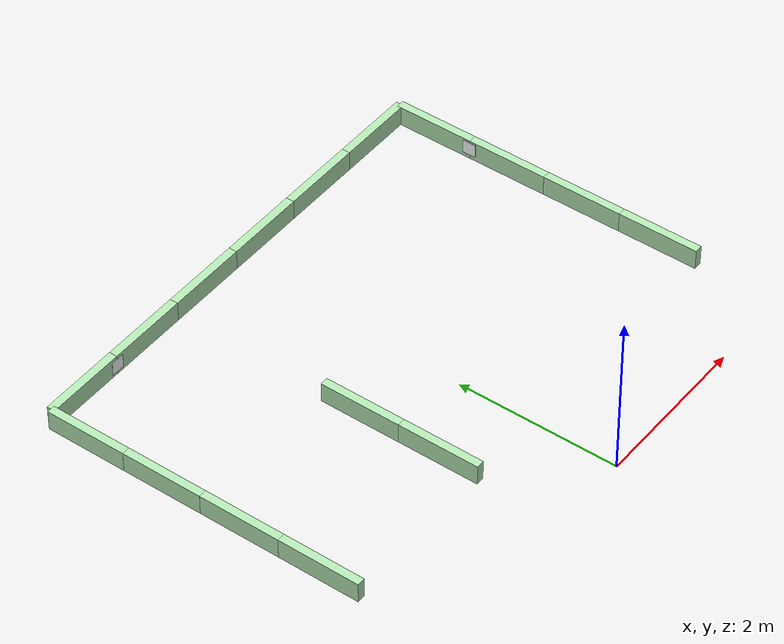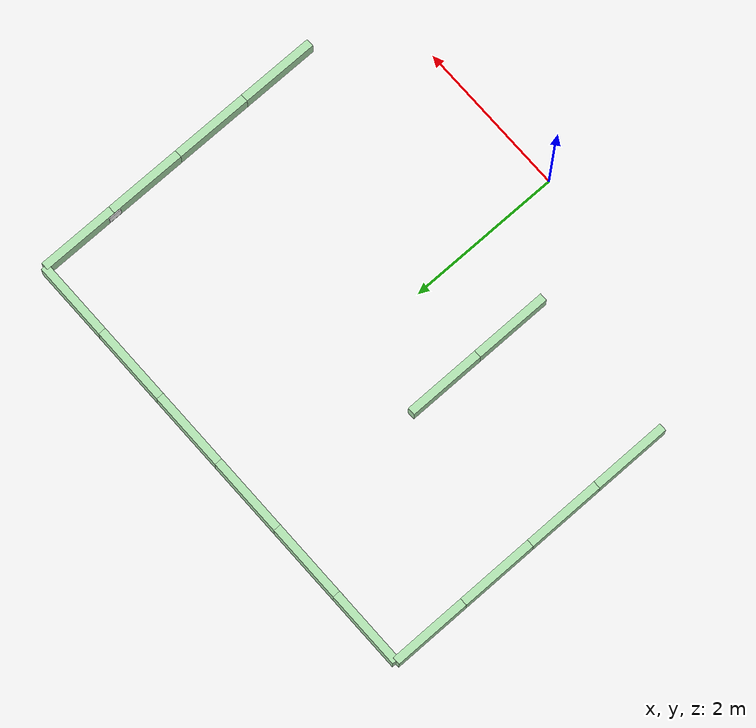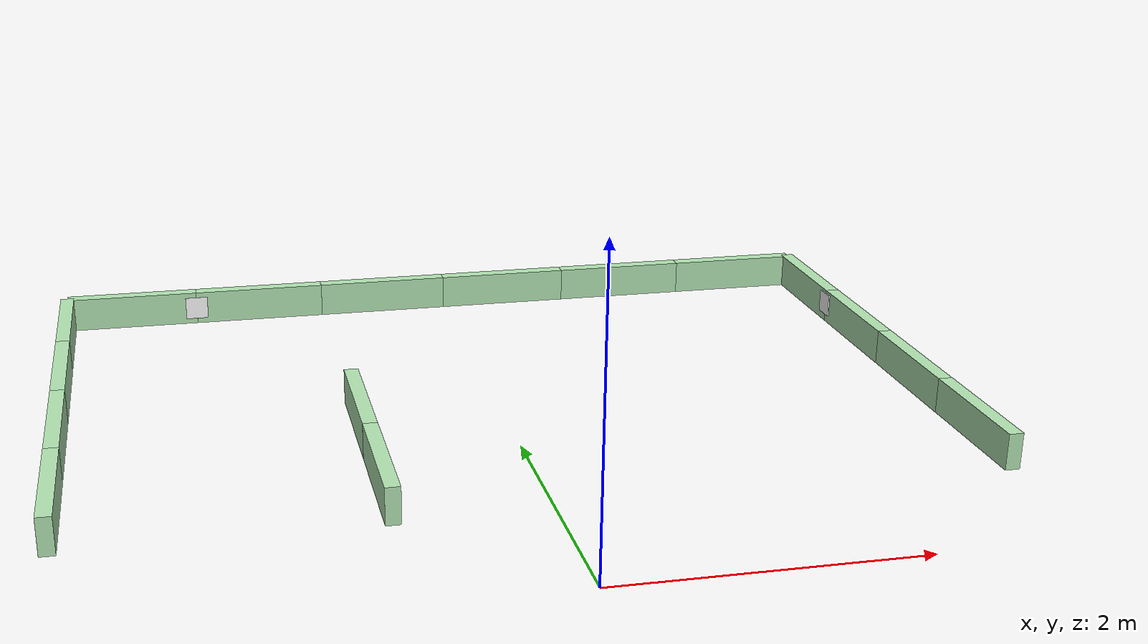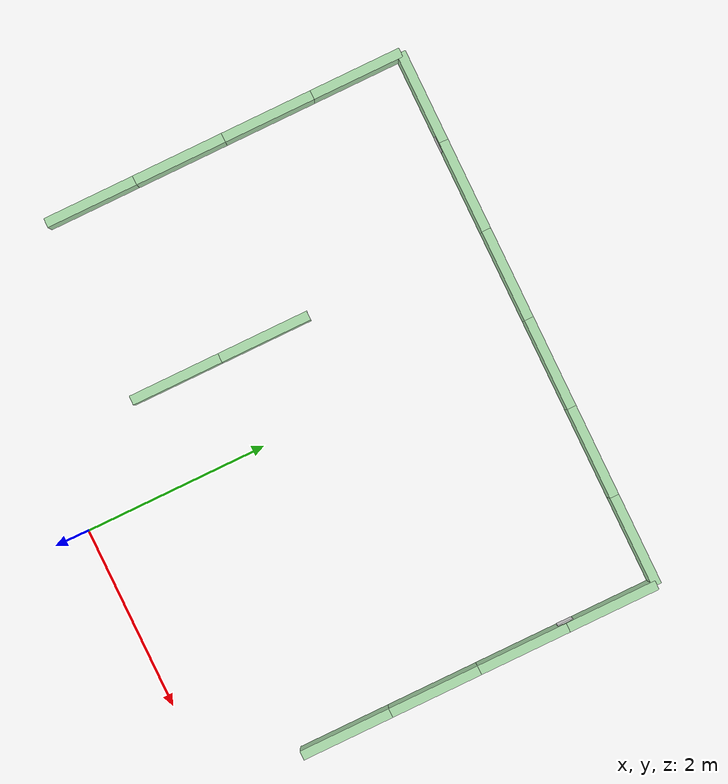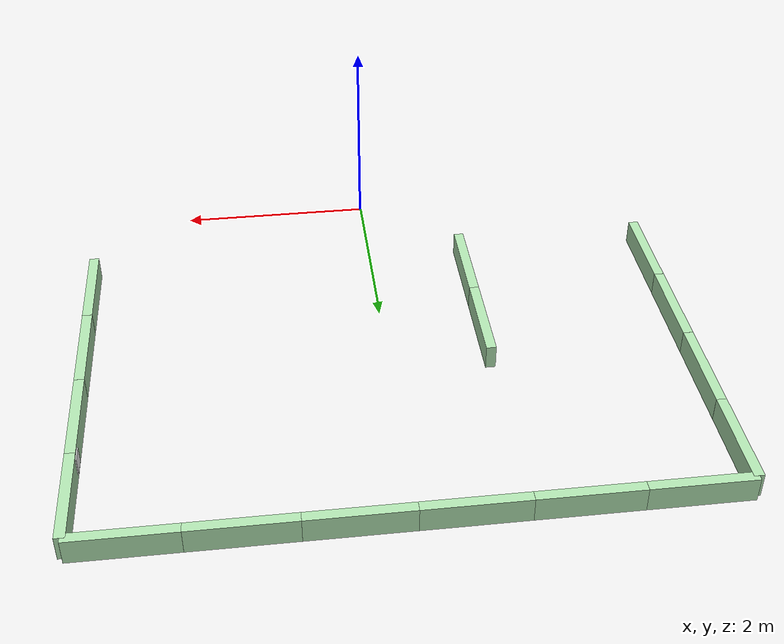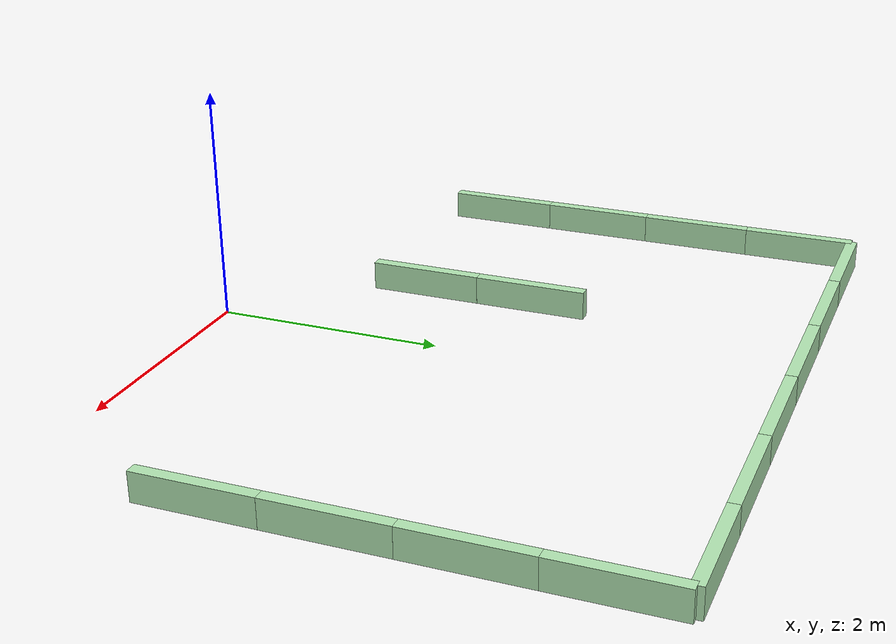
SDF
<sdf version="1.6">
 <world name="default">
  <model name="wall_100_25h_1_clone_9_clone_clone_8">
   <link name="link">
    <inertial>
     <mass>1</mass>
     <inertia>
      <ixx>0.166667</ixx>
      <ixy>0</ixy>
      <ixz>0</ixz>
      <iyy>0.166667</iyy>
      <iyz>0</iyz>
      <izz>0.166667</izz>
     </inertia>
    </inertial>
    <visual name="visual">
     <geometry><box><size>1 0.1 0.25</size></box></geometry>
     <material>
      <script><name>Gazebo/Grey</name><uri>file://media/materials/scripts/gazebo.material</uri></script>
      <ambient>0.3 0.5 0.3 1</ambient>
      <diffuse>0.7 0.9 0.7 1</diffuse>
      <specular>0.01 0.02 0.01 1</specular>
      <emissive>0 0 0 1</emissive>
      <lighting>1</lighting>
      <shader type="vertex"><normal_map>__default__</normal_map></shader>
     </material>
    </visual>
    <collision name="collision">
     <geometry><box><size>1 0.1 0.25</size></box></geometry>
     <surface>
      <friction>
       <ode><mu>1</mu><mu2>1</mu2><fdir1>0 0 0</fdir1><slip1>0</slip1><slip2>0</slip2></ode>
       <torsional>
        <coefficient>1</coefficient>
        <patch_radius>0</patch_radius>
        <surface_radius>0</surface_radius>
        <use_patch_radius>1</use_patch_radius>
        <ode><slip>0</slip></ode>
       </torsional>
      </friction>
      <bounce><restitution_coefficient>0</restitution_coefficient><threshold>1e+06</threshold></bounce>
      <contact>
       <collide_without_contact>0</collide_without_contact>
       <collide_without_contact_bitmask>1</collide_without_contact_bitmask>
       <collide_bitmask>1</collide_bitmask>
       <ode>
        <soft_cfm>0</soft_cfm>
        <soft_erp>0.2</soft_erp>
        <kp>1e+13</kp>
        <kd>1</kd>
        <max_vel>0.01</max_vel>
        <min_depth>0</min_depth>
       </ode>
       <bullet>
        <split_impulse>1</split_impulse>
        <split_impulse_penetration_threshold>-0.01</split_impulse_penetration_threshold>
        <soft_cfm>0</soft_cfm>
        <soft_erp>0.2</soft_erp>
        <kp>1e+13</kp>
        <kd>1</kd>
       </bullet>
      </contact>
     </surface>
    </collision>
   </link>
   <static>1</static>
   <pose>-1 1.5 0.125 0 0.000404 -1.57111</pose>
  </model>
  <model name="wall_100_25h_1_clone_9_clone_clone_9">
   <link name="link">
    <inertial>
     <mass>1</mass>
     <inertia>
      <ixx>0.166667</ixx>
      <ixy>0</ixy>
      <ixz>0</ixz>
      <iyy>0.166667</iyy>
      <iyz>0</iyz>
      <izz>0.166667</izz>
     </inertia>
    </inertial>
    <visual name="visual">
     <geometry><box><size>1 0.1 0.25</size></box></geometry>
     <material>
      <script><name>Gazebo/Grey</name><uri>file://media/materials/scripts/gazebo.material</uri></script>
      <ambient>0.3 0.5 0.3 1</ambient>
      <diffuse>0.7 0.9 0.7 1</diffuse>
      <specular>0.01 0.02 0.01 1</specular>
      <emissive>0 0 0 1</emissive>
      <lighting>1</lighting>
      <shader type="vertex"><normal_map>__default__</normal_map></shader>
     </material>
    </visual>
    <collision name="collision">
     <geometry><box><size>1 0.1 0.25</size></box></geometry>
     <surface>
      <friction>
       <ode><mu>1</mu><mu2>1</mu2><fdir1>0 0 0</fdir1><slip1>0</slip1><slip2>0</slip2></ode>
       <torsional>
        <coefficient>1</coefficient>
        <patch_radius>0</patch_radius>
        <surface_radius>0</surface_radius>
        <use_patch_radius>1</use_patch_radius>
        <ode><slip>0</slip></ode>
       </torsional>
      </friction>
      <bounce><restitution_coefficient>0</restitution_coefficient><threshold>1e+06</threshold></bounce>
      <contact>
       <collide_without_contact>0</collide_without_contact>
       <collide_without_contact_bitmask>1</collide_without_contact_bitmask>
       <collide_bitmask>1</collide_bitmask>
       <ode>
        <soft_cfm>0</soft_cfm>
        <soft_erp>0.2</soft_erp>
        <kp>1e+13</kp>
        <kd>1</kd>
        <max_vel>0.01</max_vel>
        <min_depth>0</min_depth>
       </ode>
       <bullet>
        <split_impulse>1</split_impulse>
        <split_impulse_penetration_threshold>-0.01</split_impulse_penetration_threshold>
        <soft_cfm>0</soft_cfm>
        <soft_erp>0.2</soft_erp>
        <kp>1e+13</kp>
        <kd>1</kd>
       </bullet>
      </contact>
     </surface>
    </collision>
   </link>
   <static>1</static>
   <pose>-1 2.5 0.125 0 0.000404 -1.57111</pose>
  </model>
  <model name="wall_100_25h_1_clone_9_clone_clone_12">
   <link name="link">
    <inertial>
     <mass>1</mass>
     <inertia>
      <ixx>0.166667</ixx>
      <ixy>0</ixy>
      <ixz>0</ixz>
      <iyy>0.166667</iyy>
      <iyz>0</iyz>
      <izz>0.166667</izz>
     </inertia>
    </inertial>
    <visual name="visual">
     <geometry><box><size>1 0.1 0.25</size></box></geometry>
     <material>
      <script><name>Gazebo/Grey</name><uri>file://media/materials/scripts/gazebo.material</uri></script>
      <ambient>0.3 0.5 0.3 1</ambient>
      <diffuse>0.7 0.9 0.7 1</diffuse>
      <specular>0.01 0.02 0.01 1</specular>
      <emissive>0 0 0 1</emissive>
      <lighting>1</lighting>
      <shader type="vertex"><normal_map>__default__</normal_map></shader>
     </material>
    </visual>
    <collision name="collision">
     <geometry><box><size>1 0.1 0.25</size></box></geometry>
     <surface>
      <friction>
       <ode><mu>1</mu><mu2>1</mu2><fdir1>0 0 0</fdir1><slip1>0</slip1><slip2>0</slip2></ode>
       <torsional>
        <coefficient>1</coefficient>
        <patch_radius>0</patch_radius>
        <surface_radius>0</surface_radius>
        <use_patch_radius>1</use_patch_radius>
        <ode><slip>0</slip></ode>
       </torsional>
      </friction>
      <bounce><restitution_coefficient>0</restitution_coefficient><threshold>1e+06</threshold></bounce>
      <contact>
       <collide_without_contact>0</collide_without_contact>
       <collide_without_contact_bitmask>1</collide_without_contact_bitmask>
       <collide_bitmask>1</collide_bitmask>
       <ode>
        <soft_cfm>0</soft_cfm>
        <soft_erp>0.2</soft_erp>
        <kp>1e+13</kp>
        <kd>1</kd>
        <max_vel>0.01</max_vel>
        <min_depth>0</min_depth>
       </ode>
       <bullet>
        <split_impulse>1</split_impulse>
        <split_impulse_penetration_threshold>-0.01</split_impulse_penetration_threshold>
        <soft_cfm>0</soft_cfm>
        <soft_erp>0.2</soft_erp>
        <kp>1e+13</kp>
        <kd>1</kd>
       </bullet>
      </contact>
     </surface>
    </collision>
   </link>
   <static>1</static>
   <pose>-3 1.5 0.125 0 0.000404 -1.57111</pose>
  </model>
  <model name="wall_100_25h_1_clone_9_clone_clone_13">
   <link name="link">
    <inertial>
     <mass>1</mass>
     <inertia>
      <ixx>0.166667</ixx>
      <ixy>0</ixy>
      <ixz>0</ixz>
      <iyy>0.166667</iyy>
      <iyz>0</iyz>
      <izz>0.166667</izz>
     </inertia>
    </inertial>
    <visual name="visual">
     <geometry><box><size>1 0.1 0.25</size></box></geometry>
     <material>
      <script><name>Gazebo/Grey</name><uri>file://media/materials/scripts/gazebo.material</uri></script>
      <ambient>0.3 0.5 0.3 1</ambient>
      <diffuse>0.7 0.9 0.7 1</diffuse>
      <specular>0.01 0.02 0.01 1</specular>
      <emissive>0 0 0 1</emissive>
      <lighting>1</lighting>
      <shader type="vertex"><normal_map>__default__</normal_map></shader>
     </material>
    </visual>
    <collision name="collision">
     <geometry><box><size>1 0.1 0.25</size></box></geometry>
     <surface>
      <friction>
       <ode><mu>1</mu><mu2>1</mu2><fdir1>0 0 0</fdir1><slip1>0</slip1><slip2>0</slip2></ode>
       <torsional>
        <coefficient>1</coefficient>
        <patch_radius>0</patch_radius>
        <surface_radius>0</surface_radius>
        <use_patch_radius>1</use_patch_radius>
        <ode><slip>0</slip></ode>
       </torsional>
      </friction>
      <bounce><restitution_coefficient>0</restitution_coefficient><threshold>1e+06</threshold></bounce>
      <contact>
       <collide_without_contact>0</collide_without_contact>
       <collide_without_contact_bitmask>1</collide_without_contact_bitmask>
       <collide_bitmask>1</collide_bitmask>
       <ode>
        <soft_cfm>0</soft_cfm>
        <soft_erp>0.2</soft_erp>
        <kp>1e+13</kp>
        <kd>1</kd>
        <max_vel>0.01</max_vel>
        <min_depth>0</min_depth>
       </ode>
       <bullet>
        <split_impulse>1</split_impulse>
        <split_impulse_penetration_threshold>-0.01</split_impulse_penetration_threshold>
        <soft_cfm>0</soft_cfm>
        <soft_erp>0.2</soft_erp>
        <kp>1e+13</kp>
        <kd>1</kd>
       </bullet>
      </contact>
     </surface>
    </collision>
   </link>
   <static>1</static>
   <pose>-3 2.5 0.125 0 0.000404 -1.57111</pose>
  </model>
  <model name="wall_100_25h_1_clone_9_clone_clone_14">
   <link name="link">
    <inertial>
     <mass>1</mass>
     <inertia>
      <ixx>0.166667</ixx>
      <ixy>0</ixy>
      <ixz>0</ixz>
      <iyy>0.166667</iyy>
      <iyz>0</iyz>
      <izz>0.166667</izz>
     </inertia>
    </inertial>
    <visual name="visual">
     <geometry><box><size>1 0.1 0.25</size></box></geometry>
     <material>
      <script><name>Gazebo/Grey</name><uri>file://media/materials/scripts/gazebo.material</uri></script>
      <ambient>0.3 0.5 0.3 1</ambient>
      <diffuse>0.7 0.9 0.7 1</diffuse>
      <specular>0.01 0.02 0.01 1</specular>
      <emissive>0 0 0 1</emissive>
      <lighting>1</lighting>
      <shader type="vertex"><normal_map>__default__</normal_map></shader>
     </material>
    </visual>
    <collision name="collision">
     <geometry><box><size>1 0.1 0.25</size></box></geometry>
     <surface>
      <friction>
       <ode><mu>1</mu><mu2>1</mu2><fdir1>0 0 0</fdir1><slip1>0</slip1><slip2>0</slip2></ode>
       <torsional>
        <coefficient>1</coefficient>
        <patch_radius>0</patch_radius>
        <surface_radius>0</surface_radius>
        <use_patch_radius>1</use_patch_radius>
        <ode><slip>0</slip></ode>
       </torsional>
      </friction>
      <bounce><restitution_coefficient>0</restitution_coefficient><threshold>1e+06</threshold></bounce>
      <contact>
       <collide_without_contact>0</collide_without_contact>
       <collide_without_contact_bitmask>1</collide_without_contact_bitmask>
       <collide_bitmask>1</collide_bitmask>
       <ode>
        <soft_cfm>0</soft_cfm>
        <soft_erp>0.2</soft_erp>
        <kp>1e+13</kp>
        <kd>1</kd>
        <max_vel>0.01</max_vel>
        <min_depth>0</min_depth>
       </ode>
       <bullet>
        <split_impulse>1</split_impulse>
        <split_impulse_penetration_threshold>-0.01</split_impulse_penetration_threshold>
        <soft_cfm>0</soft_cfm>
        <soft_erp>0.2</soft_erp>
        <kp>1e+13</kp>
        <kd>1</kd>
       </bullet>
      </contact>
     </surface>
    </collision>
   </link>
   <static>1</static>
   <pose>3 1.5 0.125 0 0.000404 -1.57111</pose>
  </model>
  <model name="wall_100_25h_1_clone_9_clone_clone_15">
   <link name="link">
    <inertial>
     <mass>1</mass>
     <inertia>
      <ixx>0.166667</ixx>
      <ixy>0</ixy>
      <ixz>0</ixz>
      <iyy>0.166667</iyy>
      <iyz>0</iyz>
      <izz>0.166667</izz>
     </inertia>
    </inertial>
    <visual name="visual">
     <geometry><box><size>1 0.1 0.25</size></box></geometry>
     <material>
      <script><name>Gazebo/Grey</name><uri>file://media/materials/scripts/gazebo.material</uri></script>
      <ambient>0.3 0.5 0.3 1</ambient>
      <diffuse>0.7 0.9 0.7 1</diffuse>
      <specular>0.01 0.02 0.01 1</specular>
      <emissive>0 0 0 1</emissive>
      <lighting>1</lighting>
      <shader type="vertex"><normal_map>__default__</normal_map></shader>
     </material>
    </visual>
    <collision name="collision">
     <geometry><box><size>1 0.1 0.25</size></box></geometry>
     <surface>
      <friction>
       <ode><mu>1</mu><mu2>1</mu2><fdir1>0 0 0</fdir1><slip1>0</slip1><slip2>0</slip2></ode>
       <torsional>
        <coefficient>1</coefficient>
        <patch_radius>0</patch_radius>
        <surface_radius>0</surface_radius>
        <use_patch_radius>1</use_patch_radius>
        <ode><slip>0</slip></ode>
       </torsional>
      </friction>
      <bounce><restitution_coefficient>0</restitution_coefficient><threshold>1e+06</threshold></bounce>
      <contact>
       <collide_without_contact>0</collide_without_contact>
       <collide_without_contact_bitmask>1</collide_without_contact_bitmask>
       <collide_bitmask>1</collide_bitmask>
       <ode>
        <soft_cfm>0</soft_cfm>
        <soft_erp>0.2</soft_erp>
        <kp>1e+13</kp>
        <kd>1</kd>
        <max_vel>0.01</max_vel>
        <min_depth>0</min_depth>
       </ode>
       <bullet>
        <split_impulse>1</split_impulse>
        <split_impulse_penetration_threshold>-0.01</split_impulse_penetration_threshold>
        <soft_cfm>0</soft_cfm>
        <soft_erp>0.2</soft_erp>
        <kp>1e+13</kp>
        <kd>1</kd>
       </bullet>
      </contact>
     </surface>
    </collision>
   </link>
   <static>1</static>
   <pose>3 2.5 0.125 0 0.000404 -1.57111</pose>
  </model>
  <model name="wall_100_25h_1_clone_9_clone_clone_16">
   <link name="link">
    <inertial>
     <mass>1</mass>
     <inertia>
      <ixx>0.166667</ixx>
      <ixy>0</ixy>
      <ixz>0</ixz>
      <iyy>0.166667</iyy>
      <iyz>0</iyz>
      <izz>0.166667</izz>
     </inertia>
    </inertial>
    <visual name="visual">
     <geometry><box><size>1 0.1 0.25</size></box></geometry>
     <material>
      <script><name>Gazebo/Grey</name><uri>file://media/materials/scripts/gazebo.material</uri></script>
      <ambient>0.3 0.5 0.3 1</ambient>
      <diffuse>0.7 0.9 0.7 1</diffuse>
      <specular>0.01 0.02 0.01 1</specular>
      <emissive>0 0 0 1</emissive>
      <lighting>1</lighting>
      <shader type="vertex"><normal_map>__default__</normal_map></shader>
     </material>
    </visual>
    <collision name="collision">
     <geometry><box><size>1 0.1 0.25</size></box></geometry>
     <surface>
      <friction>
       <ode><mu>1</mu><mu2>1</mu2><fdir1>0 0 0</fdir1><slip1>0</slip1><slip2>0</slip2></ode>
       <torsional>
        <coefficient>1</coefficient>
        <patch_radius>0</patch_radius>
        <surface_radius>0</surface_radius>
        <use_patch_radius>1</use_patch_radius>
        <ode><slip>0</slip></ode>
       </torsional>
      </friction>
      <bounce><restitution_coefficient>0</restitution_coefficient><threshold>1e+06</threshold></bounce>
      <contact>
       <collide_without_contact>0</collide_without_contact>
       <collide_without_contact_bitmask>1</collide_without_contact_bitmask>
       <collide_bitmask>1</collide_bitmask>
       <ode>
        <soft_cfm>0</soft_cfm>
        <soft_erp>0.2</soft_erp>
        <kp>1e+13</kp>
        <kd>1</kd>
        <max_vel>0.01</max_vel>
        <min_depth>0</min_depth>
       </ode>
       <bullet>
        <split_impulse>1</split_impulse>
        <split_impulse_penetration_threshold>-0.01</split_impulse_penetration_threshold>
        <soft_cfm>0</soft_cfm>
        <soft_erp>0.2</soft_erp>
        <kp>1e+13</kp>
        <kd>1</kd>
       </bullet>
      </contact>
     </surface>
    </collision>
   </link>
   <static>1</static>
   <pose>3 3.5 0.125 0 0.000404 -1.57111</pose>
  </model>
  <model name="wall_100_25h_1_clone_9_clone_clone_17">
   <link name="link">
    <inertial>
     <mass>1</mass>
     <inertia>
      <ixx>0.166667</ixx>
      <ixy>0</ixy>
      <ixz>0</ixz>
      <iyy>0.166667</iyy>
      <iyz>0</iyz>
      <izz>0.166667</izz>
     </inertia>
    </inertial>
    <visual name="visual">
     <geometry><box><size>1 0.1 0.25</size></box></geometry>
     <material>
      <script><name>Gazebo/Grey</name><uri>file://media/materials/scripts/gazebo.material</uri></script>
      <ambient>0.3 0.5 0.3 1</ambient>
      <diffuse>0.7 0.9 0.7 1</diffuse>
      <specular>0.01 0.02 0.01 1</specular>
      <emissive>0 0 0 1</emissive>
      <lighting>1</lighting>
      <shader type="vertex"><normal_map>__default__</normal_map></shader>
     </material>
    </visual>
    <collision name="collision">
     <geometry><box><size>1 0.1 0.25</size></box></geometry>
     <surface>
      <friction>
       <ode><mu>1</mu><mu2>1</mu2><fdir1>0 0 0</fdir1><slip1>0</slip1><slip2>0</slip2></ode>
       <torsional>
        <coefficient>1</coefficient>
        <patch_radius>0</patch_radius>
        <surface_radius>0</surface_radius>
        <use_patch_radius>1</use_patch_radius>
        <ode><slip>0</slip></ode>
       </torsional>
      </friction>
      <bounce><restitution_coefficient>0</restitution_coefficient><threshold>1e+06</threshold></bounce>
      <contact>
       <collide_without_contact>0</collide_without_contact>
       <collide_without_contact_bitmask>1</collide_without_contact_bitmask>
       <collide_bitmask>1</collide_bitmask>
       <ode>
        <soft_cfm>0</soft_cfm>
        <soft_erp>0.2</soft_erp>
        <kp>1e+13</kp>
        <kd>1</kd>
        <max_vel>0.01</max_vel>
        <min_depth>0</min_depth>
       </ode>
       <bullet>
        <split_impulse>1</split_impulse>
        <split_impulse_penetration_threshold>-0.01</split_impulse_penetration_threshold>
        <soft_cfm>0</soft_cfm>
        <soft_erp>0.2</soft_erp>
        <kp>1e+13</kp>
        <kd>1</kd>
       </bullet>
      </contact>
     </surface>
    </collision>
   </link>
   <static>1</static>
   <pose>3 4.5 0.125 0 0.000404 -1.57111</pose>
  </model>
  <model name="wall_100_25h_1_clone_7_clone">
   <link name="link">
    <inertial>
     <mass>1</mass>
     <inertia>
      <ixx>0.166667</ixx>
      <ixy>0</ixy>
      <ixz>0</ixz>
      <iyy>0.166667</iyy>
      <iyz>0</iyz>
      <izz>0.166667</izz>
     </inertia>
    </inertial>
    <visual name="visual">
     <geometry><box><size>1 0.1 0.25</size></box></geometry>
     <material>
      <script><name>Gazebo/Grey</name><uri>file://media/materials/scripts/gazebo.material</uri></script>
      <ambient>0.3 0.5 0.3 1</ambient>
      <diffuse>0.7 0.9 0.7 1</diffuse>
      <specular>0.01 0.02 0.01 1</specular>
      <emissive>0 0 0 1</emissive>
      <lighting>1</lighting>
      <shader type="vertex"><normal_map>__default__</normal_map></shader>
     </material>
    </visual>
    <collision name="collision">
     <geometry><box><size>1 0.1 0.25</size></box></geometry>
     <surface>
      <friction>
       <ode><mu>1</mu><mu2>1</mu2><fdir1>0 0 0</fdir1><slip1>0</slip1><slip2>0</slip2></ode>
       <torsional>
        <coefficient>1</coefficient>
        <patch_radius>0</patch_radius>
        <surface_radius>0</surface_radius>
        <use_patch_radius>1</use_patch_radius>
        <ode><slip>0</slip></ode>
       </torsional>
      </friction>
      <bounce><restitution_coefficient>0</restitution_coefficient><threshold>1e+06</threshold></bounce>
      <contact>
       <collide_without_contact>0</collide_without_contact>
       <collide_without_contact_bitmask>1</collide_without_contact_bitmask>
       <collide_bitmask>1</collide_bitmask>
       <ode>
        <soft_cfm>0</soft_cfm>
        <soft_erp>0.2</soft_erp>
        <kp>1e+13</kp>
        <kd>1</kd>
        <max_vel>0.01</max_vel>
        <min_depth>0</min_depth>
       </ode>
       <bullet>
        <split_impulse>1</split_impulse>
        <split_impulse_penetration_threshold>-0.01</split_impulse_penetration_threshold>
        <soft_cfm>0</soft_cfm>
        <soft_erp>0.2</soft_erp>
        <kp>1e+13</kp>
        <kd>1</kd>
       </bullet>
      </contact>
     </surface>
    </collision>
   </link>
   <static>1</static>
   <pose>2.5 5 0.125 0.000404 -0 0</pose>
  </model>
  <model name="wall_100_25h_1_clone_7_clone_0">
   <link name="link">
    <inertial>
     <mass>1</mass>
     <inertia>
      <ixx>0.166667</ixx>
      <ixy>0</ixy>
      <ixz>0</ixz>
      <iyy>0.166667</iyy>
      <iyz>0</iyz>
      <izz>0.166667</izz>
     </inertia>
    </inertial>
    <visual name="visual">
     <geometry><box><size>1 0.1 0.25</size></box></geometry>
     <material>
      <script><name>Gazebo/Grey</name><uri>file://media/materials/scripts/gazebo.material</uri></script>
      <ambient>0.3 0.5 0.3 1</ambient>
      <diffuse>0.7 0.9 0.7 1</diffuse>
      <specular>0.01 0.02 0.01 1</specular>
      <emissive>0 0 0 1</emissive>
      <lighting>1</lighting>
      <shader type="vertex"><normal_map>__default__</normal_map></shader>
     </material>
    </visual>
    <collision name="collision">
     <geometry><box><size>1 0.1 0.25</size></box></geometry>
     <surface>
      <friction>
       <ode><mu>1</mu><mu2>1</mu2><fdir1>0 0 0</fdir1><slip1>0</slip1><slip2>0</slip2></ode>
       <torsional>
        <coefficient>1</coefficient>
        <patch_radius>0</patch_radius>
        <surface_radius>0</surface_radius>
        <use_patch_radius>1</use_patch_radius>
        <ode><slip>0</slip></ode>
       </torsional>
      </friction>
      <bounce><restitution_coefficient>0</restitution_coefficient><threshold>1e+06</threshold></bounce>
      <contact>
       <collide_without_contact>0</collide_without_contact>
       <collide_without_contact_bitmask>1</collide_without_contact_bitmask>
       <collide_bitmask>1</collide_bitmask>
       <ode>
        <soft_cfm>0</soft_cfm>
        <soft_erp>0.2</soft_erp>
        <kp>1e+13</kp>
        <kd>1</kd>
        <max_vel>0.01</max_vel>
        <min_depth>0</min_depth>
       </ode>
       <bullet>
        <split_impulse>1</split_impulse>
        <split_impulse_penetration_threshold>-0.01</split_impulse_penetration_threshold>
        <soft_cfm>0</soft_cfm>
        <soft_erp>0.2</soft_erp>
        <kp>1e+13</kp>
        <kd>1</kd>
       </bullet>
      </contact>
     </surface>
    </collision>
   </link>
   <static>1</static>
   <pose>1.5 5 0.125 0.000404 -0 0</pose>
  </model>
  <model name="wall_100_25h_1_clone_7_clone_1">
   <link name="link">
    <inertial>
     <mass>1</mass>
     <inertia>
      <ixx>0.166667</ixx>
      <ixy>0</ixy>
      <ixz>0</ixz>
      <iyy>0.166667</iyy>
      <iyz>0</iyz>
      <izz>0.166667</izz>
     </inertia>
    </inertial>
    <visual name="visual">
     <geometry><box><size>1 0.1 0.25</size></box></geometry>
     <material>
      <script><name>Gazebo/Grey</name><uri>file://media/materials/scripts/gazebo.material</uri></script>
      <ambient>0.3 0.5 0.3 1</ambient>
      <diffuse>0.7 0.9 0.7 1</diffuse>
      <specular>0.01 0.02 0.01 1</specular>
      <emissive>0 0 0 1</emissive>
      <lighting>1</lighting>
      <shader type="vertex"><normal_map>__default__</normal_map></shader>
     </material>
    </visual>
    <collision name="collision">
     <geometry><box><size>1 0.1 0.25</size></box></geometry>
     <surface>
      <friction>
       <ode><mu>1</mu><mu2>1</mu2><fdir1>0 0 0</fdir1><slip1>0</slip1><slip2>0</slip2></ode>
       <torsional>
        <coefficient>1</coefficient>
        <patch_radius>0</patch_radius>
        <surface_radius>0</surface_radius>
        <use_patch_radius>1</use_patch_radius>
        <ode><slip>0</slip></ode>
       </torsional>
      </friction>
      <bounce><restitution_coefficient>0</restitution_coefficient><threshold>1e+06</threshold></bounce>
      <contact>
       <collide_without_contact>0</collide_without_contact>
       <collide_without_contact_bitmask>1</collide_without_contact_bitmask>
       <collide_bitmask>1</collide_bitmask>
       <ode>
        <soft_cfm>0</soft_cfm>
        <soft_erp>0.2</soft_erp>
        <kp>1e+13</kp>
        <kd>1</kd>
        <max_vel>0.01</max_vel>
        <min_depth>0</min_depth>
       </ode>
       <bullet>
        <split_impulse>1</split_impulse>
        <split_impulse_penetration_threshold>-0.01</split_impulse_penetration_threshold>
        <soft_cfm>0</soft_cfm>
        <soft_erp>0.2</soft_erp>
        <kp>1e+13</kp>
        <kd>1</kd>
       </bullet>
      </contact>
     </surface>
    </collision>
   </link>
   <static>1</static>
   <pose>0.5 5 0.125 0.000404 -0 0</pose>
  </model>
  <model name="wall_100_25h_1_clone_7_clone_2">
   <link name="link">
    <inertial>
     <mass>1</mass>
     <inertia>
      <ixx>0.166667</ixx>
      <ixy>0</ixy>
      <ixz>0</ixz>
      <iyy>0.166667</iyy>
      <iyz>0</iyz>
      <izz>0.166667</izz>
     </inertia>
    </inertial>
    <visual name="visual">
     <geometry><box><size>1 0.1 0.25</size></box></geometry>
     <material>
      <script><name>Gazebo/Grey</name><uri>file://media/materials/scripts/gazebo.material</uri></script>
      <ambient>0.3 0.5 0.3 1</ambient>
      <diffuse>0.7 0.9 0.7 1</diffuse>
      <specular>0.01 0.02 0.01 1</specular>
      <emissive>0 0 0 1</emissive>
      <lighting>1</lighting>
      <shader type="vertex"><normal_map>__default__</normal_map></shader>
     </material>
    </visual>
    <collision name="collision">
     <geometry><box><size>1 0.1 0.25</size></box></geometry>
     <surface>
      <friction>
       <ode><mu>1</mu><mu2>1</mu2><fdir1>0 0 0</fdir1><slip1>0</slip1><slip2>0</slip2></ode>
       <torsional>
        <coefficient>1</coefficient>
        <patch_radius>0</patch_radius>
        <surface_radius>0</surface_radius>
        <use_patch_radius>1</use_patch_radius>
        <ode><slip>0</slip></ode>
       </torsional>
      </friction>
      <bounce><restitution_coefficient>0</restitution_coefficient><threshold>1e+06</threshold></bounce>
      <contact>
       <collide_without_contact>0</collide_without_contact>
       <collide_without_contact_bitmask>1</collide_without_contact_bitmask>
       <collide_bitmask>1</collide_bitmask>
       <ode>
        <soft_cfm>0</soft_cfm>
        <soft_erp>0.2</soft_erp>
        <kp>1e+13</kp>
        <kd>1</kd>
        <max_vel>0.01</max_vel>
        <min_depth>0</min_depth>
       </ode>
       <bullet>
        <split_impulse>1</split_impulse>
        <split_impulse_penetration_threshold>-0.01</split_impulse_penetration_threshold>
        <soft_cfm>0</soft_cfm>
        <soft_erp>0.2</soft_erp>
        <kp>1e+13</kp>
        <kd>1</kd>
       </bullet>
      </contact>
     </surface>
    </collision>
   </link>
   <static>1</static>
   <pose>-0.5 5 0.125 0.000404 -0 0</pose>
  </model>
  <model name="wall_100_25h_1_clone_7_clone_3">
   <link name="link">
    <inertial>
     <mass>1</mass>
     <inertia>
      <ixx>0.166667</ixx>
      <ixy>0</ixy>
      <ixz>0</ixz>
      <iyy>0.166667</iyy>
      <iyz>0</iyz>
      <izz>0.166667</izz>
     </inertia>
    </inertial>
    <visual name="visual">
     <geometry><box><size>1 0.1 0.25</size></box></geometry>
     <material>
      <script><name>Gazebo/Grey</name><uri>file://media/materials/scripts/gazebo.material</uri></script>
      <ambient>0.3 0.5 0.3 1</ambient>
      <diffuse>0.7 0.9 0.7 1</diffuse>
      <specular>0.01 0.02 0.01 1</specular>
      <emissive>0 0 0 1</emissive>
      <lighting>1</lighting>
      <shader type="vertex"><normal_map>__default__</normal_map></shader>
     </material>
    </visual>
    <collision name="collision">
     <geometry><box><size>1 0.1 0.25</size></box></geometry>
     <surface>
      <friction>
       <ode><mu>1</mu><mu2>1</mu2><fdir1>0 0 0</fdir1><slip1>0</slip1><slip2>0</slip2></ode>
       <torsional>
        <coefficient>1</coefficient>
        <patch_radius>0</patch_radius>
        <surface_radius>0</surface_radius>
        <use_patch_radius>1</use_patch_radius>
        <ode><slip>0</slip></ode>
       </torsional>
      </friction>
      <bounce><restitution_coefficient>0</restitution_coefficient><threshold>1e+06</threshold></bounce>
      <contact>
       <collide_without_contact>0</collide_without_contact>
       <collide_without_contact_bitmask>1</collide_without_contact_bitmask>
       <collide_bitmask>1</collide_bitmask>
       <ode>
        <soft_cfm>0</soft_cfm>
        <soft_erp>0.2</soft_erp>
        <kp>1e+13</kp>
        <kd>1</kd>
        <max_vel>0.01</max_vel>
        <min_depth>0</min_depth>
       </ode>
       <bullet>
        <split_impulse>1</split_impulse>
        <split_impulse_penetration_threshold>-0.01</split_impulse_penetration_threshold>
        <soft_cfm>0</soft_cfm>
        <soft_erp>0.2</soft_erp>
        <kp>1e+13</kp>
        <kd>1</kd>
       </bullet>
      </contact>
     </surface>
    </collision>
   </link>
   <static>1</static>
   <pose>-1.5 5 0.125 0.000404 -0 0</pose>
  </model>
  <model name="wall_100_25h_1_clone_7_clone_4">
   <link name="link">
    <inertial>
     <mass>1</mass>
     <inertia>
      <ixx>0.166667</ixx>
      <ixy>0</ixy>
      <ixz>0</ixz>
      <iyy>0.166667</iyy>
      <iyz>0</iyz>
      <izz>0.166667</izz>
     </inertia>
    </inertial>
    <visual name="visual">
     <geometry><box><size>1 0.1 0.25</size></box></geometry>
     <material>
      <script><name>Gazebo/Grey</name><uri>file://media/materials/scripts/gazebo.material</uri></script>
      <ambient>0.3 0.5 0.3 1</ambient>
      <diffuse>0.7 0.9 0.7 1</diffuse>
      <specular>0.01 0.02 0.01 1</specular>
      <emissive>0 0 0 1</emissive>
      <lighting>1</lighting>
      <shader type="vertex"><normal_map>__default__</normal_map></shader>
     </material>
    </visual>
    <collision name="collision">
     <geometry><box><size>1 0.1 0.25</size></box></geometry>
     <surface>
      <friction>
       <ode><mu>1</mu><mu2>1</mu2><fdir1>0 0 0</fdir1><slip1>0</slip1><slip2>0</slip2></ode>
       <torsional>
        <coefficient>1</coefficient>
        <patch_radius>0</patch_radius>
        <surface_radius>0</surface_radius>
        <use_patch_radius>1</use_patch_radius>
        <ode><slip>0</slip></ode>
       </torsional>
      </friction>
      <bounce><restitution_coefficient>0</restitution_coefficient><threshold>1e+06</threshold></bounce>
      <contact>
       <collide_without_contact>0</collide_without_contact>
       <collide_without_contact_bitmask>1</collide_without_contact_bitmask>
       <collide_bitmask>1</collide_bitmask>
       <ode>
        <soft_cfm>0</soft_cfm>
        <soft_erp>0.2</soft_erp>
        <kp>1e+13</kp>
        <kd>1</kd>
        <max_vel>0.01</max_vel>
        <min_depth>0</min_depth>
       </ode>
       <bullet>
        <split_impulse>1</split_impulse>
        <split_impulse_penetration_threshold>-0.01</split_impulse_penetration_threshold>
        <soft_cfm>0</soft_cfm>
        <soft_erp>0.2</soft_erp>
        <kp>1e+13</kp>
        <kd>1</kd>
       </bullet>
      </contact>
     </surface>
    </collision>
   </link>
   <static>1</static>
   <pose>-2.5 5 0.125 0.000404 -0 0</pose>
  </model>
  <model name="wall_100_25h_1_clone_9_clone_clone_13_clone">
   <link name="link">
    <inertial>
     <mass>1</mass>
     <inertia>
      <ixx>0.166667</ixx>
      <ixy>0</ixy>
      <ixz>0</ixz>
      <iyy>0.166667</iyy>
      <iyz>0</iyz>
      <izz>0.166667</izz>
     </inertia>
    </inertial>
    <visual name="visual">
     <geometry><box><size>1 0.1 0.25</size></box></geometry>
     <material>
      <script><name>Gazebo/Grey</name><uri>file://media/materials/scripts/gazebo.material</uri></script>
      <ambient>0.3 0.5 0.3 1</ambient>
      <diffuse>0.7 0.9 0.7 1</diffuse>
      <specular>0.01 0.02 0.01 1</specular>
      <emissive>0 0 0 1</emissive>
      <lighting>1</lighting>
      <shader type="vertex"><normal_map>__default__</normal_map></shader>
     </material>
    </visual>
    <collision name="collision">
     <geometry><box><size>1 0.1 0.25</size></box></geometry>
     <surface>
      <friction>
       <ode><mu>1</mu><mu2>1</mu2><fdir1>0 0 0</fdir1><slip1>0</slip1><slip2>0</slip2></ode>
       <torsional>
        <coefficient>1</coefficient>
        <patch_radius>0</patch_radius>
        <surface_radius>0</surface_radius>
        <use_patch_radius>1</use_patch_radius>
        <ode><slip>0</slip></ode>
       </torsional>
      </friction>
      <bounce><restitution_coefficient>0</restitution_coefficient><threshold>1e+06</threshold></bounce>
      <contact>
       <collide_without_contact>0</collide_without_contact>
       <collide_without_contact_bitmask>1</collide_without_contact_bitmask>
       <collide_bitmask>1</collide_bitmask>
       <ode>
        <soft_cfm>0</soft_cfm>
        <soft_erp>0.2</soft_erp>
        <kp>1e+13</kp>
        <kd>1</kd>
        <max_vel>0.01</max_vel>
        <min_depth>0</min_depth>
       </ode>
       <bullet>
        <split_impulse>1</split_impulse>
        <split_impulse_penetration_threshold>-0.01</split_impulse_penetration_threshold>
        <soft_cfm>0</soft_cfm>
        <soft_erp>0.2</soft_erp>
        <kp>1e+13</kp>
        <kd>1</kd>
       </bullet>
      </contact>
     </surface>
    </collision>
   </link>
   <static>1</static>
   <pose>-3 3.5 0.125 0 0.000404 -1.57111</pose>
  </model>
  <model name="wall_100_25h_1_clone_9_clone_clone_13_clone_0">
   <link name="link">
    <inertial>
     <mass>1</mass>
     <inertia>
      <ixx>0.166667</ixx>
      <ixy>0</ixy>
      <ixz>0</ixz>
      <iyy>0.166667</iyy>
      <iyz>0</iyz>
      <izz>0.166667</izz>
     </inertia>
    </inertial>
    <visual name="visual">
     <geometry><box><size>1 0.1 0.25</size></box></geometry>
     <material>
      <script><name>Gazebo/Grey</name><uri>file://media/materials/scripts/gazebo.material</uri></script>
      <ambient>0.3 0.5 0.3 1</ambient>
      <diffuse>0.7 0.9 0.7 1</diffuse>
      <specular>0.01 0.02 0.01 1</specular>
      <emissive>0 0 0 1</emissive>
      <lighting>1</lighting>
      <shader type="vertex"><normal_map>__default__</normal_map></shader>
     </material>
    </visual>
    <collision name="collision">
     <geometry><box><size>1 0.1 0.25</size></box></geometry>
     <surface>
      <friction>
       <ode><mu>1</mu><mu2>1</mu2><fdir1>0 0 0</fdir1><slip1>0</slip1><slip2>0</slip2></ode>
       <torsional>
        <coefficient>1</coefficient>
        <patch_radius>0</patch_radius>
        <surface_radius>0</surface_radius>
        <use_patch_radius>1</use_patch_radius>
        <ode><slip>0</slip></ode>
       </torsional>
      </friction>
      <bounce><restitution_coefficient>0</restitution_coefficient><threshold>1e+06</threshold></bounce>
      <contact>
       <collide_without_contact>0</collide_without_contact>
       <collide_without_contact_bitmask>1</collide_without_contact_bitmask>
       <collide_bitmask>1</collide_bitmask>
       <ode>
        <soft_cfm>0</soft_cfm>
        <soft_erp>0.2</soft_erp>
        <kp>1e+13</kp>
        <kd>1</kd>
        <max_vel>0.01</max_vel>
        <min_depth>0</min_depth>
       </ode>
       <bullet>
        <split_impulse>1</split_impulse>
        <split_impulse_penetration_threshold>-0.01</split_impulse_penetration_threshold>
        <soft_cfm>0</soft_cfm>
        <soft_erp>0.2</soft_erp>
        <kp>1e+13</kp>
        <kd>1</kd>
       </bullet>
      </contact>
     </surface>
    </collision>
   </link>
   <static>1</static>
   <pose>-3 4.5 0.125 0 0.000404 -1.57111</pose>
  </model>
  <model name="Apriltag36_11_00001_clone_0">
   <link name="main">
    <inertial>
     <mass>1</mass>
     <inertia><ixx>1</ixx><ixy>0</ixy><ixz>0</ixz><iyy>1</iyy><iyz>0</iyz><izz>1</izz></inertia>
    </inertial>
    <visual name="main_Visual">
     <geometry><box><size>0.170546 0.170546 0.002005</size></box></geometry>
     <material>
      <script>
       <uri>model://Apriltag36_11_00001/materials/scripts</uri>
       <uri>model://Apriltag36_11_00001/materials/textures</uri>
       <name>Apriltag36_11_00001</name>
      </script>
      <shader type="pixel"><normal_map>__default__</normal_map></shader>
      <ambient>1 1 1 1</ambient>
      <diffuse>1 1 1 1</diffuse>
      <specular>0 0 0 1</specular>
      <emissive>0 0 0 1</emissive>
     </material>
    </visual>
   </link>
   <static>1</static>
   <pose>-2 4.94595 0.125949 1.5704 1.57 0.000398</pose>
  </model>
  <model name="Apriltag36_11_00003">
   <link name="main">
    <inertial>
     <mass>1</mass>
     <inertia><ixx>1</ixx><ixy>0</ixy><ixz>0</ixz><iyy>1</iyy><iyz>0</iyz><izz>1</izz></inertia>
    </inertial>
    <visual name="main_Visual">
     <geometry><box><size>0.17 0.17 0.01</size></box></geometry>
     <material>
      <script>
       <uri>model://Apriltag36_11_00003/materials/scripts</uri>
       <uri>model://Apriltag36_11_00003/materials/textures</uri>
       <name>Apriltag36_11_00003</name>
      </script>
      <shader type="pixel"><normal_map>__default__</normal_map></shader>
      <ambient>1 1 1 1</ambient>
      <diffuse>1 1 1 1</diffuse>
      <specular>0 0 0 1</specular>
      <emissive>0 0 0 1</emissive>
     </material>
    </visual>
   </link>
   <static>1</static>
   <pose>2.9426 4 0.146915 0 1.57 0</pose>
  </model>
 </world>
</sdf>
